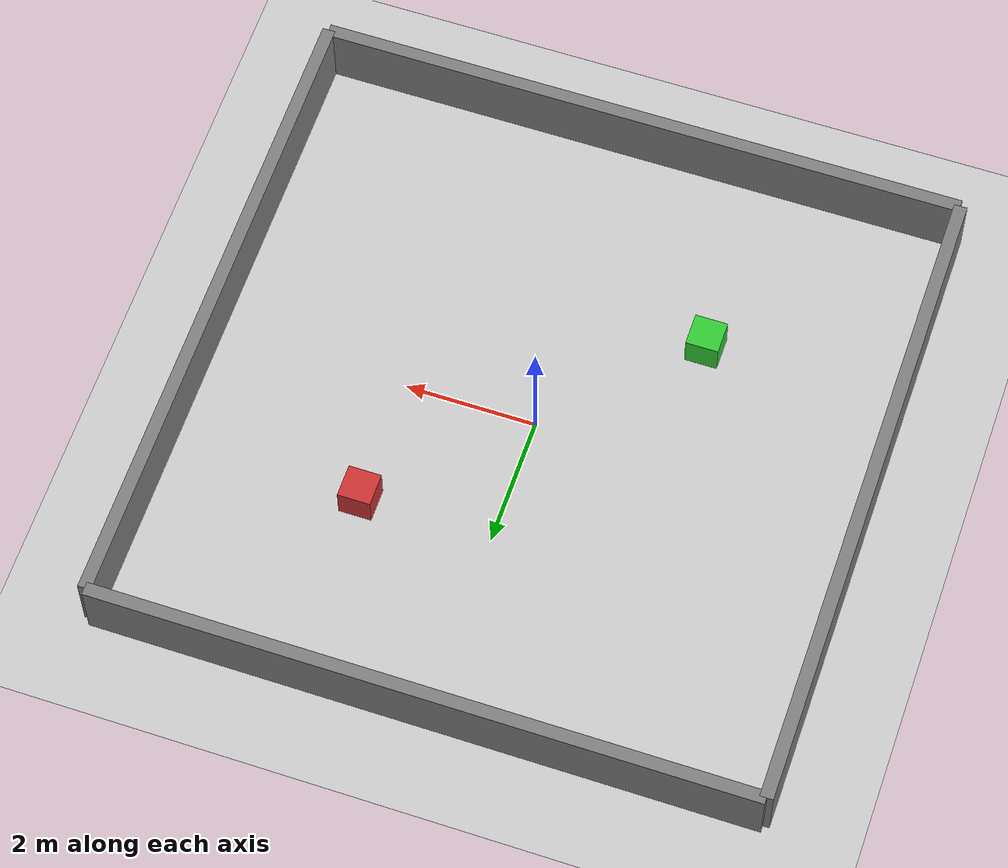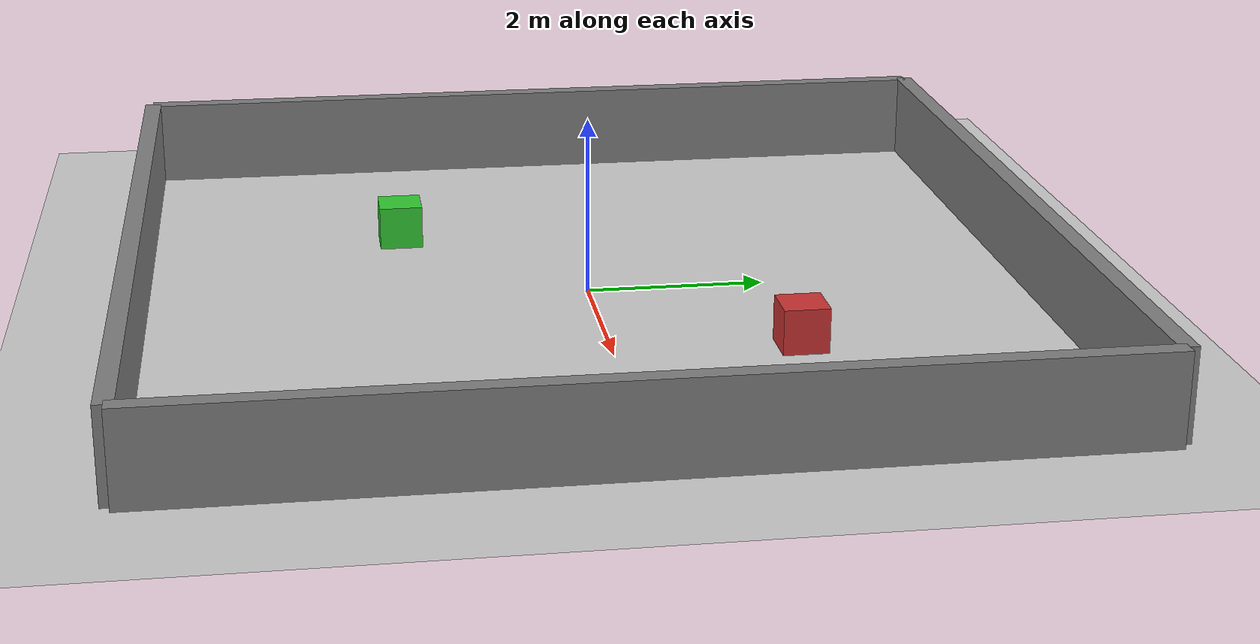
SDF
<?xml version="1.0" ?>

<sdf version="1.5">
    <world name="default">
        <!-- Target real time factor is the product of max_step_size and real_time_update_rate -->
        <!-- Negative real_time_update_rate means that Gazebo will run as fast as possible -->
        <physics type="ode">
            <type>world</type>
            <max_step_size>0.001</max_step_size>
            <real_time_update_rate>1000</real_time_update_rate>
            <iters>500</iters>
        </physics>
        <!-- A global light source -->
        <include>
            <uri>model://sun</uri>
        </include>
        <!-- A ground plane -->
        <include>
            <uri>model://ground_plane</uri>
        </include>

        <!-- Wall 1 - North wall -->
        <model name="wall_north">
            <static>true</static>
            <pose>0 5 0.5 0 0 0</pose>
            <link name="link">
                <collision name="collision">
                    <geometry>
                        <box>
                            <size>10 0.2 1</size>
                        </box>
                    </geometry>
                </collision>
                <visual name="visual">
                    <geometry>
                        <box>
                            <size>10 0.2 1</size>
                        </box>
                    </geometry>
                    <material>
                        <ambient>0.5 0.5 0.5 1</ambient>
                        <diffuse>0.5 0.5 0.5 1</diffuse>
                    </material>
                </visual>
            </link>
        </model>

        <!-- Wall 2 - South wall -->
        <model name="wall_south">
            <static>true</static>
            <pose>0 -5 0.5 0 0 0</pose>
            <link name="link">
                <collision name="collision">
                    <geometry>
                        <box>
                            <size>10 0.2 1</size>
                        </box>
                    </geometry>
                </collision>
                <visual name="visual">
                    <geometry>
                        <box>
                            <size>10 0.2 1</size>
                        </box>
                    </geometry>
                    <material>
                        <ambient>0.5 0.5 0.5 1</ambient>
                        <diffuse>0.5 0.5 0.5 1</diffuse>
                    </material>
                </visual>
            </link>
        </model>

        <!-- Wall 3 - East wall -->
        <model name="wall_east">
            <static>true</static>
            <pose>5 0 0.5 0 0 1.57</pose>
            <link name="link">
                <collision name="collision">
                    <geometry>
                        <box>
                            <size>10 0.2 1</size>
                        </box>
                    </geometry>
                </collision>
                <visual name="visual">
                    <geometry>
                        <box>
                            <size>10 0.2 1</size>
                        </box>
                    </geometry>
                    <material>
                        <ambient>0.5 0.5 0.5 1</ambient>
                        <diffuse>0.5 0.5 0.5 1</diffuse>
                    </material>
                </visual>
            </link>
        </model>

        <!-- Wall 4 - West wall -->
        <model name="wall_west">
            <static>true</static>
            <pose>-5 0 0.5 0 0 1.57</pose>
            <link name="link">
                <collision name="collision">
                    <geometry>
                        <box>
                            <size>10 0.2 1</size>
                        </box>
                    </geometry>
                </collision>
                <visual name="visual">
                    <geometry>
                        <box>
                            <size>10 0.2 1</size>
                        </box>
                    </geometry>
                    <material>
                        <ambient>0.5 0.5 0.5 1</ambient>
                        <diffuse>0.5 0.5 0.5 1</diffuse>
                    </material>
                </visual>
            </link>
        </model>

        <!-- Box obstacle 1 -->
        <model name="box_1">
            <static>true</static>
            <pose>2 2 0.25 0 0 0</pose>
            <link name="link">
                <collision name="collision">
                    <geometry>
                        <box>
                            <size>0.5 0.5 0.5</size>
                        </box>
                    </geometry>
                </collision>
                <visual name="visual">
                    <geometry>
                        <box>
                            <size>0.5 0.5 0.5</size>
                        </box>
                    </geometry>
                    <material>
                        <ambient>0.8 0.2 0.2 1</ambient>
                        <diffuse>0.8 0.2 0.2 1</diffuse>
                    </material>
                </visual>
            </link>
        </model>

        <!-- Box obstacle 2 -->
        <model name="box_2">
            <static>true</static>
            <pose>-2 -2 0.25 0 0 0</pose>
            <link name="link">
                <collision name="collision">
                    <geometry>
                        <box>
                            <size>0.5 0.5 0.5</size>
                        </box>
                    </geometry>
                </collision>
                <visual name="visual">
                    <geometry>
                        <box>
                            <size>0.5 0.5 0.5</size>
                        </box>
                    </geometry>
                    <material>
                        <ambient>0.2 0.8 0.2 1</ambient>
                        <diffuse>0.2 0.8 0.2 1</diffuse>
                    </material>
                </visual>
            </link>
        </model>

    </world>
</sdf>
